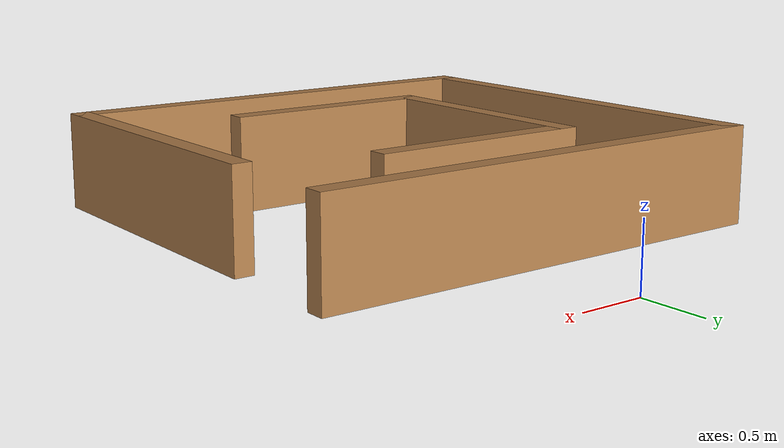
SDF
<?xml version='1.0'?>
<sdf version='1.7'>
  <model name='walls_custom'>
    <pose>-0.1 -2.1675 0 0 -0 0</pose>
    <link name='Wall_0'>
      <collision name='Wall_0_Collision'>
        <geometry>
          <box>
            <size>3.75 0.15 0.75</size>
          </box>
        </geometry>
        <pose>0 0 0.375 0 -0 0</pose>
      </collision>
      <visual name='Wall_0_Visual'>
        <pose>0 0 0.375 0 -0 0</pose>
        <geometry>
          <box>
            <size>3.75 0.15 0.75</size>
          </box>
        </geometry>
        <material>
          <script>
            <uri>file://media/materials/scripts/gazebo.material</uri>
            <name>Gazebo/Wood</name>
          </script>
          <ambient>1 1 1 1</ambient>
        </material>
        <meta>
          <layer>0</layer>
        </meta>
      </visual>
      <pose>-0 1.2575 0 0 -0 3.14159</pose>
    </link>
    <link name='Wall_1'>
      <collision name='Wall_1_Collision'>
        <geometry>
          <box>
            <size>3.5 0.15 0.75</size>
          </box>
        </geometry>
        <pose>0 0 0.375 0 -0 0</pose>
      </collision>
      <visual name='Wall_1_Visual'>
        <pose>0 0 0.375 0 -0 0</pose>
        <geometry>
          <box>
            <size>3.5 0.15 0.75</size>
          </box>
        </geometry>
        <material>
          <script>
            <uri>file://media/materials/scripts/gazebo.material</uri>
            <name>Gazebo/Wood</name>
          </script>
          <ambient>1 1 1 1</ambient>
        </material>
        <meta>
          <layer>0</layer>
        </meta>
      </visual>
      <pose>-1.8 -0.4175 0 0 -0 -1.5708</pose>
    </link>
    <link name='Wall_2'>
      <collision name='Wall_2_Collision'>
        <geometry>
          <box>
            <size>3.75 0.15 0.75</size>
          </box>
        </geometry>
        <pose>0 0 0.375 0 -0 0</pose>
      </collision>
      <visual name='Wall_2_Visual'>
        <pose>0 0 0.375 0 -0 0</pose>
        <geometry>
          <box>
            <size>3.75 0.15 0.75</size>
          </box>
        </geometry>
        <material>
          <script>
            <uri>file://media/materials/scripts/gazebo.material</uri>
            <name>Gazebo/Wood</name>
          </script>
          <ambient>1 1 1 1</ambient>
        </material>
        <meta>
          <layer>0</layer>
        </meta>
      </visual>
      <pose>-0 -2.0925 0 0 -0 0</pose>
    </link>
    <link name='Wall_3'>
      <collision name='Wall_3_Collision'>
        <geometry>
          <box>
            <size>2.5 0.15 0.75</size>
          </box>
        </geometry>
        <pose>0 0 0.375 0 -0 0</pose>
      </collision>
      <visual name='Wall_3_Visual'>
        <pose>0 0 0.375 0 -0 0</pose>
        <geometry>
          <box>
            <size>2.5 0.15 0.75</size>
          </box>
        </geometry>
        <material>
          <script>
            <uri>file://media/materials/scripts/gazebo.material</uri>
            <name>Gazebo/Wood</name>
          </script>
          <ambient>1 1 1 1</ambient>
        </material>
        <meta>
          <layer>0</layer>
        </meta>
      </visual>
      <pose>1.8 -0.9175 0 0 -0 1.5708</pose>
    </link>
    <link name='Wall_5'>
      <collision name='Wall_5_Collision'>
        <geometry>
          <box>
            <size>1.75 0.15 0.75</size>
          </box>
        </geometry>
        <pose>0 0 0.375 0 -0 0</pose>
      </collision>
      <visual name='Wall_5_Visual'>
        <pose>0 0 0.375 0 -0 0</pose>
        <geometry>
          <box>
            <size>1.75 0.15 0.75</size>
          </box>
        </geometry>
        <material>
          <script>
            <uri>file://media/materials/scripts/gazebo.material</uri>
            <name>Gazebo/Wood</name>
          </script>
          <ambient>1 1 1 1</ambient>
        </material>
        <meta>
          <layer>0</layer>
        </meta>
      </visual>
      <pose>0.04 0.5675 0 0 -0 3.14159</pose>
    </link>
    <link name='Wall_6'>
      <collision name='Wall_6_Collision'>
        <geometry>
          <box>
            <size>2 0.15 0.75</size>
          </box>
        </geometry>
        <pose>0 0 0.375 0 -0 0</pose>
      </collision>
      <visual name='Wall_6_Visual'>
        <pose>0 0 0.375 0 -0 0</pose>
        <geometry>
          <box>
            <size>2 0.15 0.75</size>
          </box>
        </geometry>
        <material>
          <script>
            <uri>file://media/materials/scripts/gazebo.material</uri>
            <name>Gazebo/Wood</name>
          </script>
          <ambient>1 1 1 1</ambient>
        </material>
        <meta>
          <layer>0</layer>
        </meta>
      </visual>
      <pose>-0.76 -0.3575 0 0 -0 -1.5708</pose>
    </link>
    <link name='Wall_7'>
      <collision name='Wall_7_Collision'>
        <geometry>
          <box>
            <size>1.75 0.15 0.75</size>
          </box>
        </geometry>
        <pose>0 0 0.375 0 -0 0</pose>
      </collision>
      <visual name='Wall_7_Visual'>
        <pose>0 0 0.375 0 -0 0</pose>
        <geometry>
          <box>
            <size>1.75 0.15 0.75</size>
          </box>
        </geometry>
        <material>
          <script>
            <uri>file://media/materials/scripts/gazebo.material</uri>
            <name>Gazebo/Wood</name>
          </script>
          <ambient>1 1 1 1</ambient>
        </material>
        <meta>
          <layer>0</layer>
        </meta>
      </visual>
      <pose>0.04 -1.2825 0 0 -0 0</pose>
    </link>
    <static>1</static>
  </model>
</sdf>
